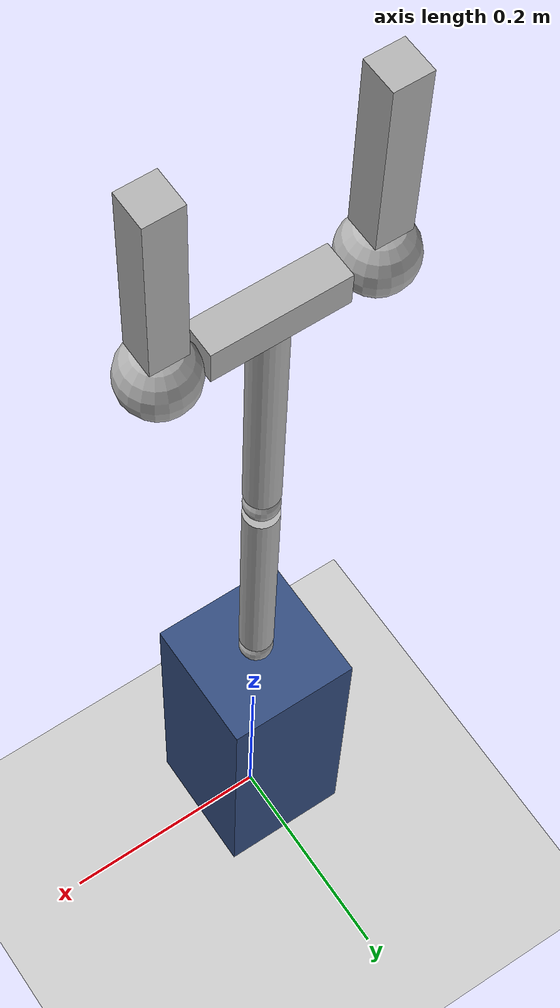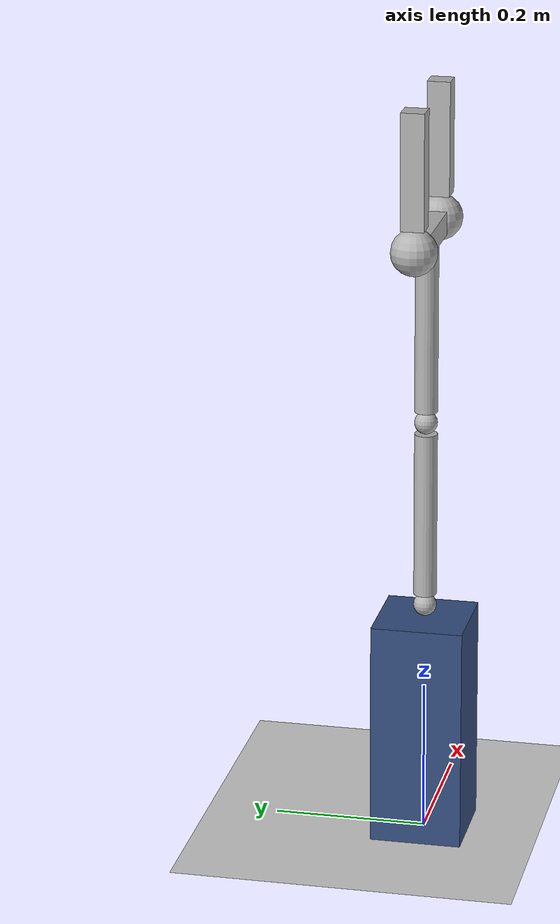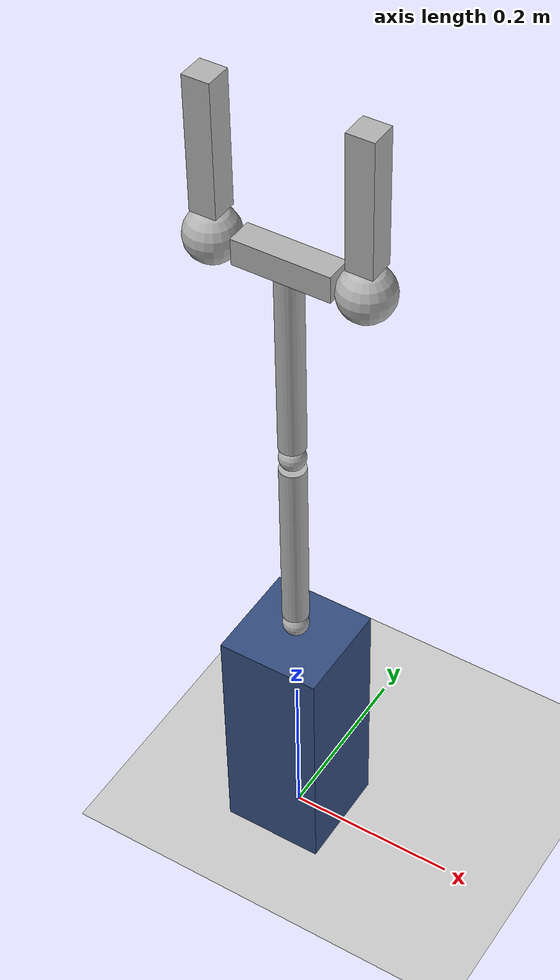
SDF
<?xml version="1.0"?>
<!--
  Minimal world for the thesis arm (replaces braco_com_mesa.world).
  Physics step and real-time factor are the thesis values (1 ms, 1.0).
-->
<sdf version="1.9">
  <world name="mestrado">
    <physics name="1ms" type="ignored">
      <max_step_size>0.001</max_step_size>
      <real_time_factor>1.0</real_time_factor>
    </physics>

    <plugin filename="gz-sim-physics-system" name="gz::sim::systems::Physics"/>
    <plugin filename="gz-sim-user-commands-system" name="gz::sim::systems::UserCommands"/>
    <plugin filename="gz-sim-scene-broadcaster-system" name="gz::sim::systems::SceneBroadcaster"/>

    <light type="directional" name="sun">
      <cast_shadows>true</cast_shadows>
      <pose>0 0 10 0 0 0</pose>
      <diffuse>0.8 0.8 0.8 1</diffuse>
      <specular>0.2 0.2 0.2 1</specular>
      <direction>-0.5 0.1 -0.9</direction>
    </light>

    <model name="ground_plane">
      <static>true</static>
      <link name="link">
        <collision name="collision">
          <geometry><plane><normal>0 0 1</normal><size>10 10</size></plane></geometry>
        </collision>
        <visual name="visual">
          <geometry><plane><normal>0 0 1</normal><size>10 10</size></plane></geometry>
          <material><ambient>0.8 0.8 0.8 1</ambient><diffuse>0.8 0.8 0.8 1</diffuse></material>
        </visual>
      </link>
    </model>

    <!-- Pedestal so the shoulder does not rub against the ground plane. -->
    <model name="pedestal">
      <static>true</static>
      <pose>0 0 0.15 0 0 0</pose>
      <link name="link">
        <collision name="collision">
          <geometry><box><size>0.12 0.12 0.3</size></box></geometry>
        </collision>
        <visual name="visual">
          <geometry><box><size>0.12 0.12 0.3</size></box></geometry>
          <material><ambient>0.2 0.3 0.5 1</ambient><diffuse>0.2 0.3 0.5 1</diffuse></material>
        </visual>
      </link>
    </model>

    <include>
      <uri>model://braco_antebraco_garra</uri>
      <pose>0 0 0.301 0 0 0</pose>
    </include>
  </world>
</sdf>

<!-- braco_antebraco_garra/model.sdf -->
<sdf version="1.9">
  <model name="braco_antebraco_garra">
    <static>false</static>
    <self_collide>false</self_collide>

    <!-- legacy link_0 -->
    <link name="shoulder_link">
      <pose>0 0 0.015 0 0 0</pose>
      <inertial>
        <mass>0.175</mass>
        <inertia><ixx>0.0175</ixx><iyy>0.0175</iyy><izz>0.0175</izz><ixy>0</ixy><ixz>0</ixz><iyz>0</iyz></inertia>
      </inertial>
      <visual name="visual">
        <geometry><sphere><radius>0.015</radius></sphere></geometry>
        <material><ambient>0.3 0.3 0.3 1</ambient><diffuse>0.7 0.7 0.7 1</diffuse><specular>0.01 0.01 0.01 1</specular></material>
      </visual>
      <collision name="collision">
        <geometry><sphere><radius>0.015</radius></sphere></geometry>
      </collision>
    </link>

    <!-- legacy link_1 -->
    <link name="upper_arm_link">
      <pose>0 0 0.14 0 0 0</pose>
      <inertial>
        <mass>1.924</mass>
        <inertia><ixx>0.280583</ixx><iyy>0.280583</iyy><izz>0.2405</izz><ixy>0</ixy><ixz>0</ixz><iyz>0</iyz></inertia>
      </inertial>
      <visual name="visual">
        <geometry><cylinder><radius>0.015</radius><length>0.22</length></cylinder></geometry>
        <material><ambient>0.3 0.3 0.3 1</ambient><diffuse>0.7 0.7 0.7 1</diffuse><specular>0.01 0.01 0.01 1</specular></material>
      </visual>
      <collision name="collision">
        <geometry><cylinder><radius>0.015</radius><length>0.22</length></cylinder></geometry>
      </collision>
    </link>

    <!-- legacy link_2 -->
    <link name="elbow_link">
      <pose>0 0 0.265 0 0 0</pose>
      <inertial>
        <mass>0.175</mass>
        <inertia><ixx>0.0175</ixx><iyy>0.0175</iyy><izz>0.0175</izz><ixy>0</ixy><ixz>0</ixz><iyz>0</iyz></inertia>
      </inertial>
      <visual name="visual">
        <geometry><sphere><radius>0.015</radius></sphere></geometry>
        <material><ambient>0.3 0.3 0.3 1</ambient><diffuse>0.7 0.7 0.7 1</diffuse><specular>0.01 0.01 0.01 1</specular></material>
      </visual>
      <collision name="collision">
        <geometry><sphere><radius>0.015</radius></sphere></geometry>
      </collision>
    </link>

    <!-- legacy link_3 -->
    <link name="forearm_link">
      <pose>0 0 0.39 0 0 0</pose>
      <inertial>
        <mass>1.184</mass>
        <inertia><ixx>0.00484207</ixx><iyy>0.00484207</iyy><izz>0.0001332</izz><ixy>0</ixy><ixz>0</ixz><iyz>0</iyz></inertia>
      </inertial>
      <visual name="visual">
        <geometry><cylinder><radius>0.015</radius><length>0.22</length></cylinder></geometry>
        <material><ambient>0.3 0.3 0.3 1</ambient><diffuse>0.7 0.7 0.7 1</diffuse><specular>0.01 0.01 0.01 1</specular></material>
      </visual>
      <collision name="collision">
        <geometry><cylinder><radius>0.015</radius><length>0.22</length></cylinder></geometry>
      </collision>
    </link>

    <!-- legacy link_4 -->
    <link name="gripper_base_link">
      <pose>0 0 0.515 0 0 0</pose>
      <inertial>
        <mass>0.15</mass>
        <inertia><ixx>0.025</ixx><iyy>0.025</iyy><izz>0.025</izz><ixy>0</ixy><ixz>0</ixz><iyz>0</iyz></inertia>
      </inertial>
      <visual name="visual">
        <geometry><box><size>0.11 0.03 0.03</size></box></geometry>
        <material><ambient>0.3 0.3 0.3 1</ambient><diffuse>0.7 0.7 0.7 1</diffuse><specular>0.01 0.01 0.01 1</specular></material>
      </visual>
      <collision name="collision">
        <geometry><box><size>0.11 0.03 0.03</size></box></geometry>
      </collision>
    </link>

    <!-- legacy link_5 -->
    <link name="finger_left_base_link">
      <pose>-0.085 0 0.515 0 0 0</pose>
      <inertial>
        <mass>0.05</mass>
        <inertia><ixx>4.5e-06</ixx><iyy>4.5e-06</iyy><izz>4.5e-06</izz><ixy>0</ixy><ixz>0</ixz><iyz>0</iyz></inertia>
      </inertial>
      <visual name="visual">
        <geometry><sphere><radius>0.03</radius></sphere></geometry>
        <material><ambient>0.3 0.3 0.3 1</ambient><diffuse>0.7 0.7 0.7 1</diffuse><specular>0.01 0.01 0.01 1</specular></material>
      </visual>
      <collision name="collision">
        <geometry><sphere><radius>0.03</radius></sphere></geometry>
      </collision>
    </link>

    <!-- legacy link_6 -->
    <link name="finger_right_base_link">
      <pose>0.085 0 0.515 0 0 0</pose>
      <inertial>
        <mass>0.05</mass>
        <inertia><ixx>4.5e-06</ixx><iyy>4.5e-06</iyy><izz>4.5e-06</izz><ixy>0</ixy><ixz>0</ixz><iyz>0</iyz></inertia>
      </inertial>
      <visual name="visual">
        <geometry><sphere><radius>0.03</radius></sphere></geometry>
        <material><ambient>0.3 0.3 0.3 1</ambient><diffuse>0.7 0.7 0.7 1</diffuse><specular>0.01 0.01 0.01 1</specular></material>
      </visual>
      <collision name="collision">
        <geometry><sphere><radius>0.03</radius></sphere></geometry>
      </collision>
    </link>

    <!-- legacy link_7 -->
    <link name="finger_left_link">
      <pose>-0.085 0 0.62 0 0 0</pose>
      <inertial>
        <mass>0.125</mass>
        <inertia><ixx>0.00024375</ixx><iyy>0.00024375</iyy><izz>1.875e-05</izz><ixy>0</ixy><ixz>0</ixz><iyz>0</iyz></inertia>
      </inertial>
      <visual name="visual">
        <geometry><box><size>0.03 0.03 0.15</size></box></geometry>
        <material><ambient>0.3 0.3 0.3 1</ambient><diffuse>0.7 0.7 0.7 1</diffuse><specular>0.01 0.01 0.01 1</specular></material>
      </visual>
      <collision name="collision">
        <geometry><cylinder><radius>0.015</radius><length>0.15</length></cylinder></geometry>
      </collision>
    </link>

    <!-- legacy link_8 -->
    <link name="finger_right_link">
      <pose>0.085 0 0.62 0 0 0</pose>
      <inertial>
        <mass>0.125</mass>
        <inertia><ixx>0.00024375</ixx><iyy>0.00024375</iyy><izz>1.875e-05</izz><ixy>0</ixy><ixz>0</ixz><iyz>0</iyz></inertia>
      </inertial>
      <visual name="visual">
        <geometry><box><size>0.03 0.03 0.15</size></box></geometry>
        <material><ambient>0.3 0.3 0.3 1</ambient><diffuse>0.7 0.7 0.7 1</diffuse><specular>0.01 0.01 0.01 1</specular></material>
      </visual>
      <collision name="collision">
        <geometry><cylinder><radius>0.015</radius><length>0.15</length></cylinder></geometry>
      </collision>
    </link>

    <!-- legacy world_JOINT_0 -->
    <joint name="shoulder_joint" type="revolute">
      <parent>world</parent>
      <child>shoulder_link</child>
      <axis>
        <xyz>1 0 0</xyz>
        <limit><lower>-3.15</lower><upper>3.15</upper><effort>1e6</effort><velocity>-1</velocity></limit>
        <dynamics><damping>0</damping><spring_reference>0</spring_reference><spring_stiffness>0</spring_stiffness></dynamics>
      </axis>
    </joint>
    <!-- legacy link_0_JOINT_0 -->
    <joint name="upper_arm_fixed" type="fixed">
      <parent>shoulder_link</parent>
      <child>upper_arm_link</child>
    </joint>
    <!-- legacy link_1_JOINT_0 -->
    <joint name="elbow_joint" type="revolute">
      <parent>upper_arm_link</parent>
      <child>elbow_link</child>
      <axis>
        <xyz>1 0 0</xyz>
        <limit><lower>-3.15</lower><upper>3.15</upper><effort>1e6</effort><velocity>-1</velocity></limit>
        <dynamics><damping>0</damping><spring_reference>0</spring_reference><spring_stiffness>0</spring_stiffness></dynamics>
      </axis>
    </joint>
    <!-- legacy link_2_JOINT_0 -->
    <joint name="forearm_fixed" type="fixed">
      <parent>elbow_link</parent>
      <child>forearm_link</child>
    </joint>
    <!-- legacy link_3_JOINT_0 -->
    <joint name="gripper_fixed" type="fixed">
      <parent>forearm_link</parent>
      <child>gripper_base_link</child>
    </joint>
    <!-- legacy link_4_JOINT_0 -->
    <joint name="gripper_left_joint" type="prismatic">
      <parent>gripper_base_link</parent>
      <child>finger_left_base_link</child>
      <axis>
        <xyz>1 0 0</xyz>
        <limit><lower>-0.04</lower><upper>0.04</upper><effort>1e6</effort><velocity>-1</velocity></limit>
      </axis>
    </joint>
    <!-- legacy link_4_JOINT_1 -->
    <joint name="gripper_right_joint" type="prismatic">
      <parent>gripper_base_link</parent>
      <child>finger_right_base_link</child>
      <axis>
        <xyz>1 0 0</xyz>
        <limit><lower>-0.04</lower><upper>0.04</upper><effort>1e6</effort><velocity>-1</velocity></limit>
      </axis>
    </joint>
    <!-- legacy link_5_JOINT_0 / link_6_JOINT_0 -->
    <joint name="finger_left_fixed" type="fixed">
      <parent>finger_left_base_link</parent>
      <child>finger_left_link</child>
    </joint>
    <joint name="finger_right_fixed" type="fixed">
      <parent>finger_right_base_link</parent>
      <child>finger_right_link</child>
    </joint>

    <!-- Replaces the joint_states* / inst_vel* publishers of libarm_control.so -->
    <plugin filename="gz-sim-joint-state-publisher-system" name="gz::sim::systems::JointStatePublisher">
      <topic>/arm/joint_states</topic>
      <joint_name>shoulder_joint</joint_name>
      <joint_name>elbow_joint</joint_name>
      <joint_name>gripper_left_joint</joint_name>
      <joint_name>gripper_right_joint</joint_name>
    </plugin>

    <plugin filename="gz-sim-joint-controller-system" name="gz::sim::systems::JointController">
      <joint_name>shoulder_joint</joint_name>
      <topic>/arm/shoulder/cmd_vel</topic>
      <initial_velocity>0</initial_velocity>
    </plugin>
    <plugin filename="gz-sim-joint-controller-system" name="gz::sim::systems::JointController">
      <joint_name>elbow_joint</joint_name>
      <topic>/arm/elbow/cmd_vel</topic>
      <initial_velocity>0</initial_velocity>
    </plugin>
    <plugin filename="gz-sim-joint-controller-system" name="gz::sim::systems::JointController">
      <joint_name>gripper_left_joint</joint_name>
      <topic>/arm/gripper_left/cmd_vel</topic>
      <initial_velocity>0</initial_velocity>
    </plugin>
    <plugin filename="gz-sim-joint-controller-system" name="gz::sim::systems::JointController">
      <joint_name>gripper_right_joint</joint_name>
      <topic>/arm/gripper_right/cmd_vel</topic>
      <initial_velocity>0</initial_velocity>
    </plugin>
  </model>
</sdf>
